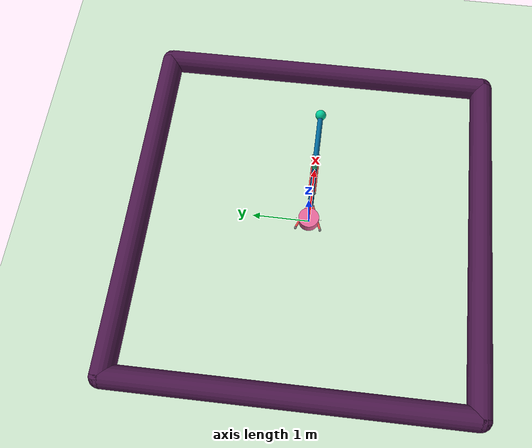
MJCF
<?xml version="1.0" encoding="utf-8"?>
<mujoco model="reacher">
	<compiler angle="degree" inertiafromgeom="true"/>
	<default>
		<joint armature="1" damping="1" limited="true"/>
		<geom contype="0" friction="1 0.1 0.1" rgba="0.7 0.7 0 1"/>
	</default>
	<option gravity="0 0 -9.81" integrator="RK4" timestep="0.01"/>
	<worldbody>
		<light cutoff="100" diffuse="1 1 1" dir="0 0 -1.3" directional="true" exponent="1" pos="0 0 1.3" specular="0.1 0.1 0.1"/>
		<geom conaffinity="1" condim="3" material="MatPlane" name="floor" pos="0 0 0" rgba="0.8 0.9 0.8 1" size="40 40 40" type="plane"/>
		<geom conaffinity="0" fromto="-3 -3 0.1 3 -3 0.1" name="sideS" rgba="0.3 0.1 0.3 1" size="0.2" type="capsule"/>
		<geom conaffinity="0" fromto="3 -3 0.1 3 3 0.1" name="sideE" rgba="0.3 0.1 0.3 1" size="0.2" type="capsule"/>
		<geom conaffinity="0" fromto="-3 3 0.1 3 3 0.1" name="sideN" rgba="0.3 0.1 0.3 1" size="0.2" type="capsule"/>
		<geom conaffinity="0" fromto="-3 -3 0.1 -3 3 0.1" name="sideW" rgba="0.3 0.1 0.3 1" size="0.2" type="capsule"/>
		<body name="shoulder_body" pos="0 0 0">
			<geom conaffinity="0" contype="0" fromto="0 0 0 0 0 0.2" name="shoulder_geom" rgba="0.9 0.4 0.6 1" size="0.18" type="cylinder"/>
			<site name="left_flex_shoulder_insertion" pos="-0.18 0.216 0.1" size="0.025"/>
			<site name="left_flex_shoulder_side" pos="0.0 0.216 0.1" size="0.005"/>
			<site name="right_flex_shoulder_insertion" pos="-0.18 -0.216 0.1" size="0.025"/>
			<site name="right_flex_shoulder_side" pos="0.0 -0.216 0.1" size="0.005"/>
			<body name="upper_arm_body" pos="0 0 .1">
				<geom fromto="0 0 0 1.0 0 0" name="upper_arm_geom" rgba="0.0 0.2 0.4 1" size="0.05" type="capsule"/>
				<joint axis="0 0 1" limited="true" name="shoulder_joint" pos="0 0 0" range="-100 100" type="hinge"/>
				<site name="left_flex_ua_insertion" pos="0.25 0.05 0.0" size="0.025"/>
				<site name="right_flex_ua_insertion" pos="0.25 -0.05 0.0" size="0.025"/>
				<site name="left_curl_ua_insertion" pos="0.5 0.05 0.0" size="0.025"/>
				<site name="right_curl_ua_insertion" pos="0.5 -0.05 0.0" size="0.025"/>
				<body name="elbow_body" pos="1.0 0 0">
					<geom conaffinity="0" contype="0" fromto="0 0 -0.05 0 0 0.05" name="elbow_geom" rgba="0.3 0.9 0.3 0.4" size="0.05500000000000001" type="cylinder"/>
					<site name="elbow_left_side" pos="0 0.06050000000000001 0.0" size="0.005"/>
					<site name="elbow_right_side" pos="0 -0.06050000000000001 0.0" size="0.005"/>
				</body>
				<body name="lower_arm" pos="1 0 0">
					<joint axis="0 0 1" limited="true" name="elbow_joint" pos="0 0 0" range="-172 172" type="hinge"/>
					<geom fromto="0 0 0 1.0 0 0" name="lower_arm_geom" rgba="0.0 0.4 0.6 1" size="0.05" type="capsule"/>
					<site name="left_curl_la_insertion" pos="0.25 0.05 0.0" size="0.025"/>
					<site name="right_curl_la_insertion" pos="0.25 -0.05 0.0" size="0.025"/>
					<body name="fingertip_body" pos="1.1 0 0">
						<geom contype="0" name="fingertip_geom" pos="0 0 0" rgba="0.0 0.8 0.6 1" size=".1" type="sphere"/>
					</body>
				</body>
			</body>
		</body>
		<body name="target_body" pos="0 0 0.1">
			<joint armature="0" axis="1 0 0" damping="0" limited="false" name="target_joint_x" pos="0 0 0" stiffness="0" type="slide"/>
			<joint armature="0" axis="0 1 0" damping="0" limited="false" name="target_joint_y" pos="0 0 0" stiffness="0" type="slide"/>
			<geom conaffinity="0" contype="0" name="target_geom" pos="0 0 0" rgba="0.9 0.2 0.2 1" size=".09" type="sphere"/>
		</body>
	</worldbody>
	<tendon>
		<spatial name="left_flex_tendon" rgba="0.95 0.3 0.3 1" stiffness="100" width="0.02">
			<site site="left_flex_shoulder_insertion"/>
			<geom geom="shoulder_geom" sidesite="left_flex_shoulder_side"/>
			<site site="left_flex_ua_insertion"/>
		</spatial>
		<spatial name="right_flex_tendon" rgba="0.95 0.3 0.3 1" stiffness="100" width="0.02">
			<site site="right_flex_shoulder_insertion"/>
			<geom geom="shoulder_geom" sidesite="right_flex_shoulder_side"/>
			<site site="right_flex_ua_insertion"/>
		</spatial>
		<spatial name="left_curl_tendon" rgba="0.95 0.3 0.3 1" stiffness="100" width="0.02">
			<site site="left_curl_ua_insertion"/>
			<geom geom="elbow_geom" sidesite="elbow_left_side"/>
			<site site="left_curl_la_insertion"/>
		</spatial>
		<spatial name="right_curl_tendon" rgba="0.95 0.3 0.3 1" stiffness="100" width="0.02">
			<site site="right_curl_ua_insertion"/>
			<geom geom="elbow_geom" sidesite="elbow_right_side"/>
			<site site="right_curl_la_insertion"/>
		</spatial>
	</tendon>
	<actuator>
		<general ctrllimited="true" ctrlrange="-1.0 0.0" gainprm="100" name="left_flex_act" tendon="left_flex_tendon"/>
		<general ctrllimited="true" ctrlrange="-1.0 0.0" gainprm="100" name="right_flex_act" tendon="right_flex_tendon"/>
		<general ctrllimited="true" ctrlrange="-1.0 0.0" gainprm="100" name="left_curl_act" tendon="left_curl_tendon"/>
		<general ctrllimited="true" ctrlrange="-1.0 0.0" gainprm="100" name="right_curl_act" tendon="right_curl_tendon"/>
	</actuator>
	<asset>
		<texture fileback="sunny-back.png" filedown="sunny-down.png" filefront="sunny-front.png" fileleft="sunny-left.png" fileright="sunny-right.png" fileup="sunny-up.png" type="skybox"/>
		<texture builtin="flat" height="1278" mark="cross" markrgb="1 1 1" name="texgeom" random="0.01" rgb1="0.8627450980392157 0.8901960784313725 0.9137254901960784" rgb2="0.9058823529411765 0.9215686274509803 0.9647058823529412" type="cube" width="127"/>
		<texture builtin="checker" height="100" name="texplane" rgb1="0.8235294117647058 0.8117647058823529 0.9450980392156862" rgb2="0.43137254901960786 0.6392156862745098 0.9019607843137255" type="2d" width="100"/>
		<material name="MatPlane" reflectance="0.5" shininess="1" specular="1" texrepeat="60 60" texture="texplane"/>
		<material name="geom" texture="texgeom" texuniform="true"/>
	</asset>
</mujoco>
